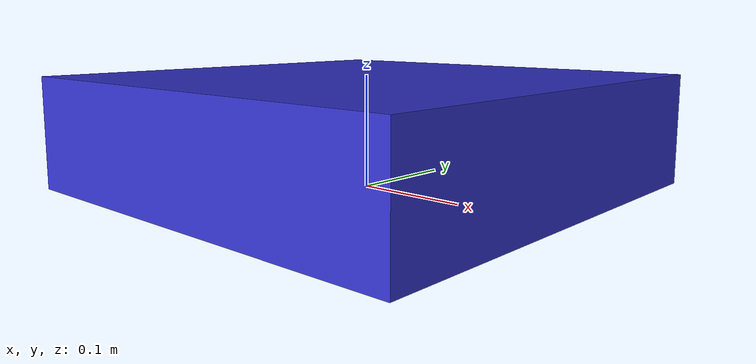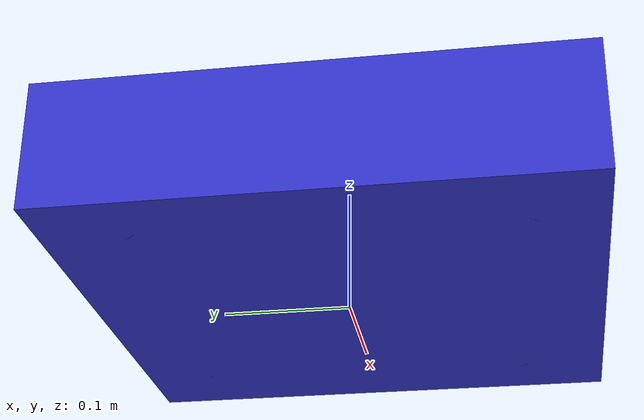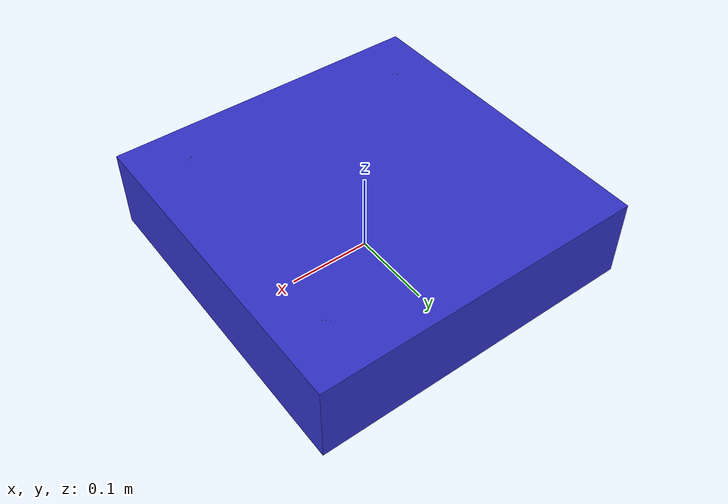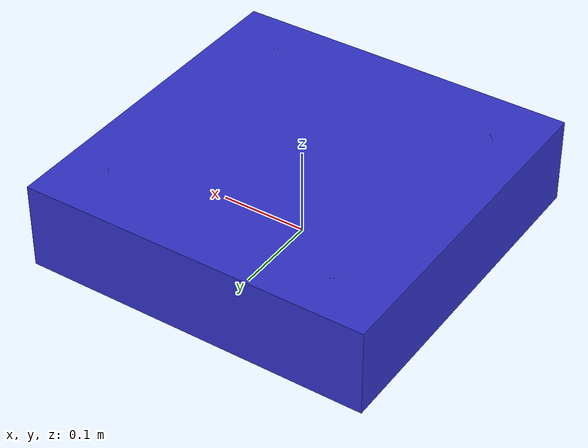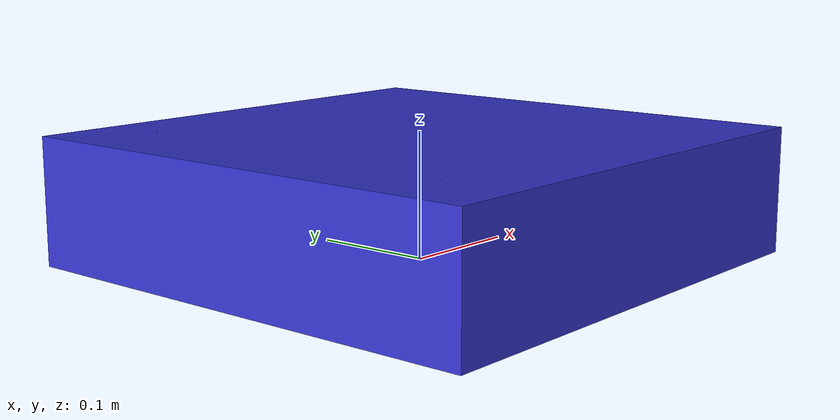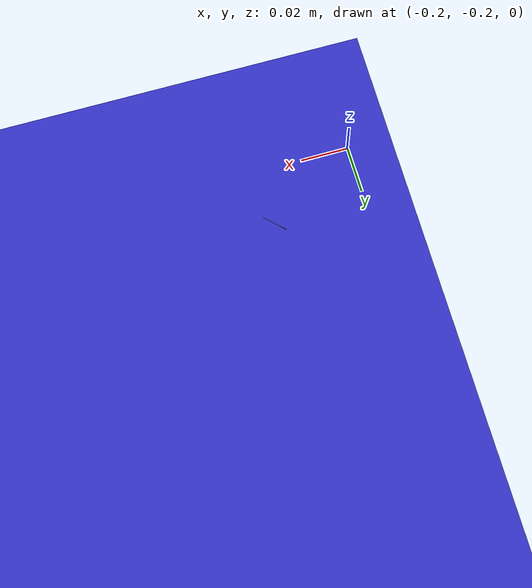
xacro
<?xml version="1.0"?>
<robot name="josjisbot" xmlns:xacro="http://www.ros.org/wiki/xacro">

	<link name="base_footprint"/>
	<link name="base_link">
		<visual>
			<origin xyz="0 0 0" rpy="0 0 0"/>
			<geometry>
				<box size="0.4 0.4 0.1"/>
			</geometry>
			<material name="blue">
				<color rgba="0.2 0.2 0.8 1.0"/>
			</material>
		</visual>
		<collision>
			<origin xyz="0 0 0" rpy="0 0 0"/>
			<geometry>
				<box size="0.4 0.4 0.1"/>
			</geometry>
		</collision>
		<inertial>
			<origin xyz="0 0 0" rpy="0 0 0"/>
			<mass value="5.0"/>
			<inertia ixx="0.133" ixy="0.0" ixz="0.0"
				iyy="0.133" iyz="0.0"
				izz="0.133"/>
		</inertial>
	</link>

	<link name="wheel_fr">
		<visual>
			<origin xyz="0 0 0" rpy="1.57 0 0"/>
			<geometry>
				<cylinder radius="0.05" length="0.03"/>
			</geometry>
			<material name="black">
				<color rgba="0.2 0.2 0.2 1.0"/>
			</material>
		</visual>
		<collision>
			<origin xyz="0 0 0" rpy="1.57 0 0"/>
			<geometry>
				<cylinder radius="0.05" length="0.03"/>
			</geometry>
		</collision>
		<inertial>
			<origin xyz="0 0 0" rpy="0 0 0"/>
			<mass value="0.2"/>
			<inertia ixx="0.0003" ixy="0.0" ixz="0.0"
				iyy="0.0005" iyz="0.0"
				izz="0.0005"/>
		</inertial>
	</link>
	<link name="wheel_fl">
		<visual>
			<origin xyz="0 0 0" rpy="1.57 0 0"/>
			<geometry>
				<cylinder radius="0.05" length="0.03"/>
			</geometry>
			<material name="black">
				<color rgba="0.2 0.2 0.2 1.0"/>
			</material>
		</visual>
		<collision>
			<origin xyz="0 0 0" rpy="1.57 0 0"/>
			<geometry>
				<cylinder radius="0.05" length="0.03"/>
			</geometry>
		</collision>
		<inertial>
			<origin xyz="0 0 0" rpy="0 0 0"/>
			<mass value="0.2"/>
			<inertia ixx="0.0003" ixy="0.0" ixz="0.0"
				iyy="0.0005" iyz="0.0"
				izz="0.0005"/>
		</inertial>
	</link>
	<link name="wheel_bl">
		<visual>
			<origin xyz="0 0 0" rpy="1.57 0 0"/>
			<geometry>
				<cylinder radius="0.05" length="0.03"/>
			</geometry>
			<material name="black">
				<color rgba="0.2 0.2 0.2 1.0"/>
			</material>
		</visual>
		<collision>
			<origin xyz="0 0 0" rpy="1.57 0 0"/>
			<geometry>
				<cylinder radius="0.05" length="0.03"/>
			</geometry>
		</collision>
		<inertial>
			<origin xyz="0 0 0" rpy="0 0 0"/>
			<mass value="0.2"/>
			<inertia ixx="0.0003" ixy="0.0" ixz="0.0"
				iyy="0.0005" iyz="0.0"
				izz="0.0005"/>
		</inertial>
	</link>
	<link name="wheel_br">
		<visual>
			<origin xyz="0 0 0" rpy="1.57 0 0"/>
			<geometry>
				<cylinder radius="0.05" length="0.03"/>
			</geometry>
			<material name="black">
				<color rgba="0.2 0.2 0.2 1.0"/>
			</material>
		</visual>
		<collision>
			<origin xyz="0 0 0" rpy="1.57 0 0"/>
			<geometry>
				<cylinder radius="0.05" length="0.03"/>
			</geometry>
		</collision>
		<inertial>
			<origin xyz="0 0 0" rpy="0 0 0"/>
			<mass value="0.2"/>
			<inertia ixx="0.0003" ixy="0.0" ixz="0.0"
				iyy="0.0005" iyz="0.0"
				izz="0.0005"/>
		</inertial>
	</link>

	<joint name="base_joint" type="fixed">
		<parent link="base_footprint"/>
		<child link="base_link" />
		<origin xyz="0 0 0.05" rpy="0 0 0"/>
	</joint>

  <joint name="wheel_fr_joint" type="continuous">
    <parent link="base_link"/>
    <child link="wheel_fr"/>
    <origin xyz="0.141 0.141 0" rpy="0 0 0.785"/>
    <axis xyz="-1 0 0"/>
    <dynamics damping="0.1" friction="0.1"/>
  </joint>

  <joint name="wheel_fl_joint" type="continuous">
    <parent link="base_link"/>
    <child link="wheel_fl"/>
    <origin xyz="-0.141 0.141 0" rpy="0 0 2.356"/>
    <axis xyz="-1 0 0"/>
    <dynamics damping="0.1" friction="0.1"/>
  </joint>

  <joint name="wheel_bl_joint" type="continuous">
    <parent link="base_link"/>
    <child link="wheel_bl"/>
    <origin xyz="-0.141 -0.141 0" rpy="0 0 3.927"/>
    <axis xyz="-1 0 0"/>
    <dynamics damping="0.1" friction="0.1"/>
  </joint>

  <joint name="wheel_br_joint" type="continuous">
    <parent link="base_link"/>
    <child link="wheel_br"/>
    <origin xyz="0.141 -0.141 0" rpy="0 0 5.498"/>
    <axis xyz="-1 0 0"/>
    <dynamics damping="0.1" friction="0.1"/>
  </joint>

</robot>
